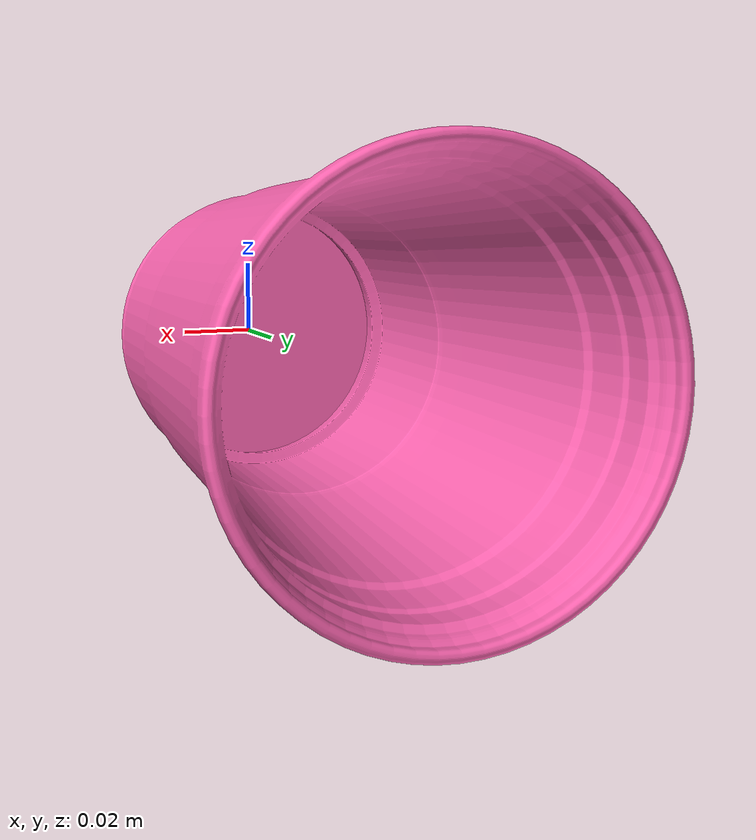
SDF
<?xml version="1.0"?>
<sdf version="1.9">
  <model name="cup_template">
    <link name="base_link">
      <pose>0 0 0 0 0 0</pose>
      <inertial>
        <pose>0 0.065 0 0 0 0</pose>
        <mass>0.01136</mass>
        <inertia>
          <ixx>1.14e-4</ixx>
          <iyy>1.66e-5</iyy>
          <izz>1.14e-4</izz>
          <ixy>0</ixy>
          <ixz>0</ixz>
          <iyz>0</iyz>
        </inertia>
      </inertial>

      <collision name="cup_collision">
        <pose>0 0 0 0 0 0</pose>
        <geometry>
          <mesh>
            <uri>file:///workspaces/StackBot/assets/cup_collision.obj</uri>
            <scale>0.3 0.3 0.3</scale>
          </mesh>
        </geometry>
        <surface>
          <friction>
            <ode>
              <mu>0.8</mu>
              <mu2>0.8</mu2>
            </ode>
          </friction>
        </surface>
      </collision>
      <visual name="cup_mesh">
        <pose>0 0 0 0 0 0</pose>
        <geometry>
          <mesh>
            <uri>file:///workspaces/StackBot/assets/cup.obj</uri>
            <scale>0.3 0.3 0.3</scale>
          </mesh>
        </geometry>
        <material>
          <ambient>1.0 0.4 0.7 1.0</ambient>
          <diffuse>1.0 0.4 0.7 1.0</diffuse>
        </material>
      </visual>

    </link>
  </model>
</sdf>
